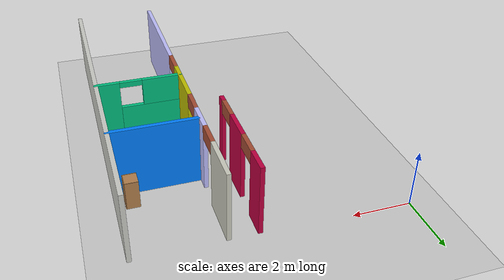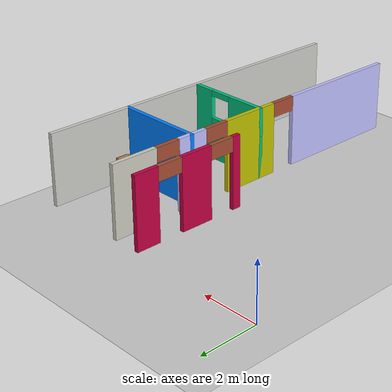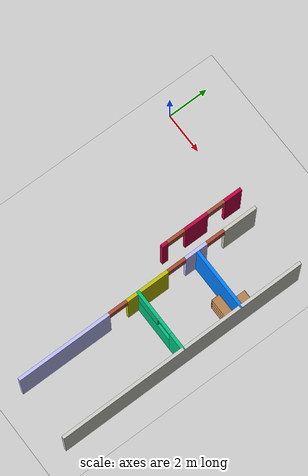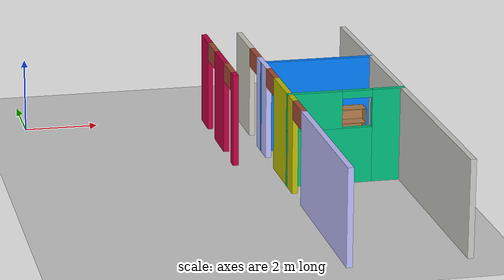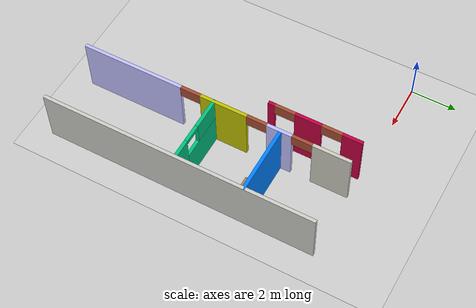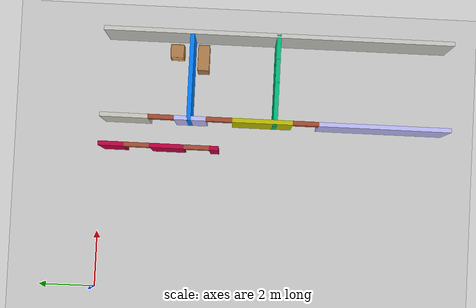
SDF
<sdf version="1.6">
 <world name="default">
  <model name="ground_plane">
   <static>1</static>
   <link name="link">
    <collision name="collision">
     <geometry><plane><normal>0 0 1</normal><size>100 100</size></plane></geometry>
     <surface>
      <contact><collide_bitmask>65535</collide_bitmask></contact>
      <friction><ode><mu>100</mu><mu2>50</mu2></ode></friction>
     </surface>
    </collision>
    <visual name="visual">
     <cast_shadows>0</cast_shadows>
     <geometry><plane><normal>0 0 1</normal><size>100 100</size></plane></geometry>
     <material>
      <script><uri>file://media/materials/scripts/gazebo.material</uri><name>Gazebo/Grey</name></script>
     </material>
    </visual>
   </link>
  </model>
  <model name="cabinet_0">
   <static>1</static>
   <link name="cabinet_bottom_plate">
    <inertial>
     <pose>0 0 -1 0 -0 0</pose>
     <inertia><ixx>2.05</ixx><ixy>0</ixy><ixz>0</ixz><iyy>2.05</iyy><iyz>0</iyz><izz>2.05</izz></inertia>
     <mass>25</mass>
    </inertial>
    <collision name="cabinet_bottom_plate_geom">
     <pose>0 0 0.01 0 -0 0</pose>
     <geometry><box><size>0.45 0.45 0.02</size></box></geometry>
    </collision>
    <visual name="cabinet_bottom_plate_geom_visual">
     <pose>0 0 0.01 0 -0 0</pose>
     <geometry><box><size>0.45 0.45 0.02</size></box></geometry>
     <material>
      <script><uri>file://media/materials/scripts/gazebo.material</uri><name>Gazebo/Wood</name></script>
     </material>
    </visual>
    <collision name="cabinet_bottom_plate_geom_cabinet_back_plate">
     <pose>0.235 0 0.51 0 -0 0</pose>
     <geometry><box><size>0.02 0.45 1.02</size></box></geometry>
    </collision>
    <visual name="cabinet_bottom_plate_geom_cabinet_back_plate_visual">
     <pose>0.235 0 0.51 0 -0 0</pose>
     <geometry><box><size>0.02 0.45 1.02</size></box></geometry>
     <material>
      <script><uri>file://media/materials/scripts/gazebo.material</uri><name>Gazebo/Wood</name></script>
     </material>
    </visual>
    <collision name="cabinet_bottom_plate_geom_cabinet_left_plate">
     <pose>0 0.235 0.51 0 -0 0</pose>
     <geometry><box><size>0.45 0.02 1.02</size></box></geometry>
    </collision>
    <visual name="cabinet_bottom_plate_geom_cabinet_left_plate_visual">
     <pose>0 0.235 0.51 0 -0 0</pose>
     <geometry><box><size>0.45 0.02 1.02</size></box></geometry>
     <material>
      <script><uri>file://media/materials/scripts/gazebo.material</uri><name>Gazebo/Wood</name></script>
     </material>
    </visual>
    <collision name="cabinet_bottom_plate_geom_cabinet_middle_plate">
     <pose>0 0 0.51 0 -0 0</pose>
     <geometry><box><size>0.45 0.45 0.02</size></box></geometry>
    </collision>
    <visual name="cabinet_bottom_plate_geom_cabinet_middle_plate_visual">
     <pose>0 0 0.51 0 -0 0</pose>
     <geometry><box><size>0.45 0.45 0.02</size></box></geometry>
     <material>
      <script><uri>file://media/materials/scripts/gazebo.material</uri><name>Gazebo/Wood</name></script>
     </material>
    </visual>
    <collision name="cabinet_bottom_plate_geom_cabinet_right_plate">
     <pose>0 -0.235 0.51 0 -0 0</pose>
     <geometry><box><size>0.45 0.02 1.02</size></box></geometry>
    </collision>
    <visual name="cabinet_bottom_plate_geom_cabinet_right_plate_visual">
     <pose>0 -0.235 0.51 0 -0 0</pose>
     <geometry><box><size>0.45 0.02 1.02</size></box></geometry>
     <material>
      <script><uri>file://media/materials/scripts/gazebo.material</uri><name>Gazebo/Wood</name></script>
     </material>
    </visual>
    <collision name="cabinet_bottom_plate_geom_cabinet_top_plate">
     <pose>0 0 1.01 0 -0 0</pose>
     <geometry><box><size>0.45 0.45 0.02</size></box></geometry>
    </collision>
    <visual name="cabinet_bottom_plate_geom_cabinet_top_plate_visual">
     <pose>0 0 1.01 0 -0 0</pose>
     <geometry><box><size>0.45 0.45 0.02</size></box></geometry>
     <material>
      <script><uri>file://media/materials/scripts/gazebo.material</uri><name>Gazebo/Wood</name></script>
     </material>
    </visual>
   </link>
   <pose>8.53968 -2.63163 0 0 -0 0</pose>
  </model>
  <model name="my_building">
   <link name="Wall_17">
    <pose>0.5 4 0 0 0 -1.5708</pose>
    <inertial>
     <mass>1</mass>
     <inertia><ixx>1</ixx><ixy>0</ixy><ixz>0</ixz><iyy>1</iyy><iyz>0</iyz><izz>1</izz></inertia>
    </inertial>
    <visual name="Wall_17_Visual_2">
     <pose>1.92248 0 1.25 0 -0 0</pose>
     <geometry><box><size>0.305035 0.15 2.5</size></box></geometry>
     <material>
      <script><uri>file://media/materials/scripts/gazebo.material</uri><name>Gazebo/Grey</name></script>
      <ambient>0.75 0 0.25 1</ambient>
      <shader type="pixel"><normal_map>__default__</normal_map></shader>
      <diffuse>0.7 0.7 0.7 1</diffuse>
      <specular>0.01 0.01 0.01 1</specular>
      <emissive>0 0 0 1</emissive>
     </material>
     <meta><layer>0</layer></meta>
    </visual>
    <visual name="Wall_17_Visual_0">
     <pose>-1.63815 0 1.25 0 -0 0</pose>
     <geometry><box><size>0.873694 0.15 2.5</size></box></geometry>
     <material>
      <script><uri>file://media/materials/scripts/gazebo.material</uri><name>Gazebo/Grey</name></script>
      <ambient>0.75 0 0.25 1</ambient>
      <shader type="pixel"><normal_map>__default__</normal_map></shader>
      <diffuse>0.7 0.7 0.7 1</diffuse>
      <specular>0.01 0.01 0.01 1</specular>
      <emissive>0 0 0 1</emissive>
     </material>
     <meta><layer>0</layer></meta>
    </visual>
    <visual name="Wall_17_Visual_4">
     <pose>1.31997 0 2.25 0 -0 0</pose>
     <geometry><box><size>0.9 0.15 0.5</size></box></geometry>
     <material>
      <script><uri>file://media/materials/scripts/gazebo.material</uri><name>Gazebo/Bricks</name></script>
      <ambient>1 1 1 1</ambient>
      <shader type="pixel"><normal_map>__default__</normal_map></shader>
      <diffuse>0.7 0.7 0.7 1</diffuse>
      <specular>0.01 0.01 0.01 1</specular>
      <emissive>0 0 0 1</emissive>
     </material>
     <meta><layer>0</layer></meta>
    </visual>
    <visual name="Wall_17_Visual_1">
     <pose>0.28433 0 1.25 0 -0 0</pose>
     <geometry><box><size>1.17127 0.15 2.5</size></box></geometry>
     <material>
      <script><uri>file://media/materials/scripts/gazebo.material</uri><name>Gazebo/Grey</name></script>
      <ambient>0.75 0 0.25 1</ambient>
      <shader type="pixel"><normal_map>__default__</normal_map></shader>
      <diffuse>0.7 0.7 0.7 1</diffuse>
      <specular>0.01 0.01 0.01 1</specular>
      <emissive>0 0 0 1</emissive>
     </material>
     <meta><layer>0</layer></meta>
    </visual>
    <visual name="Wall_17_Visual_3">
     <pose>-0.751306 0 2.25 0 -0 0</pose>
     <geometry><box><size>0.9 0.15 0.5</size></box></geometry>
     <material>
      <script><uri>file://media/materials/scripts/gazebo.material</uri><name>Gazebo/Bricks</name></script>
      <ambient>1 1 1 1</ambient>
      <shader type="pixel"><normal_map>__default__</normal_map></shader>
      <diffuse>0.7 0.7 0.7 1</diffuse>
      <specular>0.01 0.01 0.01 1</specular>
      <emissive>0 0 0 1</emissive>
     </material>
     <meta><layer>0</layer></meta>
    </visual>
    <collision name="Wall_17_Collision_0">
     <pose>-1.63815 0 1.25 0 -0 0</pose>
     <geometry><box><size>0.873694 0.15 2.5</size></box></geometry>
     <surface>
      <friction>
       <ode><mu>1</mu><mu2>1</mu2><fdir1>0 0 0</fdir1><slip1>0</slip1><slip2>0</slip2></ode>
       <torsional>
        <coefficient>1</coefficient>
        <patch_radius>0</patch_radius>
        <surface_radius>0</surface_radius>
        <use_patch_radius>1</use_patch_radius>
        <ode><slip>0</slip></ode>
       </torsional>
      </friction>
      <bounce><restitution_coefficient>0</restitution_coefficient><threshold>1e+06</threshold></bounce>
      <contact>
       <collide_without_contact>0</collide_without_contact>
       <collide_without_contact_bitmask>1</collide_without_contact_bitmask>
       <collide_bitmask>1</collide_bitmask>
       <ode>
        <soft_cfm>0</soft_cfm>
        <soft_erp>0.2</soft_erp>
        <kp>1e+13</kp>
        <kd>1</kd>
        <max_vel>0.01</max_vel>
        <min_depth>0</min_depth>
       </ode>
       <bullet>
        <split_impulse>1</split_impulse>
        <split_impulse_penetration_threshold>-0.01</split_impulse_penetration_threshold>
        <soft_cfm>0</soft_cfm>
        <soft_erp>0.2</soft_erp>
        <kp>1e+13</kp>
        <kd>1</kd>
       </bullet>
      </contact>
     </surface>
    </collision>
    <collision name="Wall_17_Collision_3">
     <pose>-0.751306 0 2.25 0 -0 0</pose>
     <geometry><box><size>0.9 0.15 0.5</size></box></geometry>
     <surface>
      <friction>
       <ode><mu>1</mu><mu2>1</mu2><fdir1>0 0 0</fdir1><slip1>0</slip1><slip2>0</slip2></ode>
       <torsional>
        <coefficient>1</coefficient>
        <patch_radius>0</patch_radius>
        <surface_radius>0</surface_radius>
        <use_patch_radius>1</use_patch_radius>
        <ode><slip>0</slip></ode>
       </torsional>
      </friction>
      <bounce><restitution_coefficient>0</restitution_coefficient><threshold>1e+06</threshold></bounce>
      <contact>
       <collide_without_contact>0</collide_without_contact>
       <collide_without_contact_bitmask>1</collide_without_contact_bitmask>
       <collide_bitmask>1</collide_bitmask>
       <ode>
        <soft_cfm>0</soft_cfm>
        <soft_erp>0.2</soft_erp>
        <kp>1e+13</kp>
        <kd>1</kd>
        <max_vel>0.01</max_vel>
        <min_depth>0</min_depth>
       </ode>
       <bullet>
        <split_impulse>1</split_impulse>
        <split_impulse_penetration_threshold>-0.01</split_impulse_penetration_threshold>
        <soft_cfm>0</soft_cfm>
        <soft_erp>0.2</soft_erp>
        <kp>1e+13</kp>
        <kd>1</kd>
       </bullet>
      </contact>
     </surface>
    </collision>
    <collision name="Wall_17_Collision_1">
     <pose>0.28433 0 1.25 0 -0 0</pose>
     <geometry><box><size>1.17127 0.15 2.5</size></box></geometry>
     <surface>
      <friction>
       <ode><mu>1</mu><mu2>1</mu2><fdir1>0 0 0</fdir1><slip1>0</slip1><slip2>0</slip2></ode>
       <torsional>
        <coefficient>1</coefficient>
        <patch_radius>0</patch_radius>
        <surface_radius>0</surface_radius>
        <use_patch_radius>1</use_patch_radius>
        <ode><slip>0</slip></ode>
       </torsional>
      </friction>
      <bounce><restitution_coefficient>0</restitution_coefficient><threshold>1e+06</threshold></bounce>
      <contact>
       <collide_without_contact>0</collide_without_contact>
       <collide_without_contact_bitmask>1</collide_without_contact_bitmask>
       <collide_bitmask>1</collide_bitmask>
       <ode>
        <soft_cfm>0</soft_cfm>
        <soft_erp>0.2</soft_erp>
        <kp>1e+13</kp>
        <kd>1</kd>
        <max_vel>0.01</max_vel>
        <min_depth>0</min_depth>
       </ode>
       <bullet>
        <split_impulse>1</split_impulse>
        <split_impulse_penetration_threshold>-0.01</split_impulse_penetration_threshold>
        <soft_cfm>0</soft_cfm>
        <soft_erp>0.2</soft_erp>
        <kp>1e+13</kp>
        <kd>1</kd>
       </bullet>
      </contact>
     </surface>
    </collision>
    <collision name="Wall_17_Collision_2">
     <pose>1.92248 0 1.25 0 -0 0</pose>
     <geometry><box><size>0.305035 0.15 2.5</size></box></geometry>
     <surface>
      <friction>
       <ode><mu>1</mu><mu2>1</mu2><fdir1>0 0 0</fdir1><slip1>0</slip1><slip2>0</slip2></ode>
       <torsional>
        <coefficient>1</coefficient>
        <patch_radius>0</patch_radius>
        <surface_radius>0</surface_radius>
        <use_patch_radius>1</use_patch_radius>
        <ode><slip>0</slip></ode>
       </torsional>
      </friction>
      <bounce><restitution_coefficient>0</restitution_coefficient><threshold>1e+06</threshold></bounce>
      <contact>
       <collide_without_contact>0</collide_without_contact>
       <collide_without_contact_bitmask>1</collide_without_contact_bitmask>
       <collide_bitmask>1</collide_bitmask>
       <ode>
        <soft_cfm>0</soft_cfm>
        <soft_erp>0.2</soft_erp>
        <kp>1e+13</kp>
        <kd>1</kd>
        <max_vel>0.01</max_vel>
        <min_depth>0</min_depth>
       </ode>
       <bullet>
        <split_impulse>1</split_impulse>
        <split_impulse_penetration_threshold>-0.01</split_impulse_penetration_threshold>
        <soft_cfm>0</soft_cfm>
        <soft_erp>0.2</soft_erp>
        <kp>1e+13</kp>
        <kd>1</kd>
       </bullet>
      </contact>
     </surface>
    </collision>
    <collision name="Wall_17_Collision_4">
     <pose>1.31997 0 2.25 0 -0 0</pose>
     <geometry><box><size>0.9 0.15 0.5</size></box></geometry>
     <surface>
      <friction>
       <ode><mu>1</mu><mu2>1</mu2><fdir1>0 0 0</fdir1><slip1>0</slip1><slip2>0</slip2></ode>
       <torsional>
        <coefficient>1</coefficient>
        <patch_radius>0</patch_radius>
        <surface_radius>0</surface_radius>
        <use_patch_radius>1</use_patch_radius>
        <ode><slip>0</slip></ode>
       </torsional>
      </friction>
      <bounce><restitution_coefficient>0</restitution_coefficient><threshold>1e+06</threshold></bounce>
      <contact>
       <collide_without_contact>0</collide_without_contact>
       <collide_without_contact_bitmask>1</collide_without_contact_bitmask>
       <collide_bitmask>1</collide_bitmask>
       <ode>
        <soft_cfm>0</soft_cfm>
        <soft_erp>0.2</soft_erp>
        <kp>1e+13</kp>
        <kd>1</kd>
        <max_vel>0.01</max_vel>
        <min_depth>0</min_depth>
       </ode>
       <bullet>
        <split_impulse>1</split_impulse>
        <split_impulse_penetration_threshold>-0.01</split_impulse_penetration_threshold>
        <soft_cfm>0</soft_cfm>
        <soft_erp>0.2</soft_erp>
        <kp>1e+13</kp>
        <kd>1</kd>
       </bullet>
      </contact>
     </surface>
    </collision>
   </link>
   <link name="Wall_19">
    <pose>3 3 0 0 -0 3.14159</pose>
    <inertial>
     <mass>1</mass>
     <inertia><ixx>1</ixx><ixy>0</ixy><ixz>0</ixz><iyy>1</iyy><iyz>0</iyz><izz>1</izz></inertia>
    </inertial>
    <visual name="Wall_19_Visual">
     <pose>0 0 1.25 0 -0 0</pose>
     <geometry><box><size>3.15 0.15 2.5</size></box></geometry>
     <material>
      <script><uri>file://media/materials/scripts/gazebo.material</uri><name>Gazebo/Grey</name></script>
      <ambient>0 0.5 1 1</ambient>
      <shader type="pixel"><normal_map>__default__</normal_map></shader>
      <diffuse>0.7 0.7 0.7 1</diffuse>
      <specular>0.01 0.01 0.01 1</specular>
      <emissive>0 0 0 1</emissive>
     </material>
     <meta><layer>0</layer></meta>
    </visual>
    <collision name="Wall_19_Collision">
     <pose>0 0 1.25 0 -0 0</pose>
     <geometry><box><size>3.15 0.15 2.5</size></box></geometry>
     <surface>
      <friction>
       <ode><mu>1</mu><mu2>1</mu2><fdir1>0 0 0</fdir1><slip1>0</slip1><slip2>0</slip2></ode>
       <torsional>
        <coefficient>1</coefficient>
        <patch_radius>0</patch_radius>
        <surface_radius>0</surface_radius>
        <use_patch_radius>1</use_patch_radius>
        <ode><slip>0</slip></ode>
       </torsional>
      </friction>
      <bounce><restitution_coefficient>0</restitution_coefficient><threshold>1e+06</threshold></bounce>
      <contact>
       <collide_without_contact>0</collide_without_contact>
       <collide_without_contact_bitmask>1</collide_without_contact_bitmask>
       <collide_bitmask>1</collide_bitmask>
       <ode>
        <soft_cfm>0</soft_cfm>
        <soft_erp>0.2</soft_erp>
        <kp>1e+13</kp>
        <kd>1</kd>
        <max_vel>0.01</max_vel>
        <min_depth>0</min_depth>
       </ode>
       <bullet>
        <split_impulse>1</split_impulse>
        <split_impulse_penetration_threshold>-0.01</split_impulse_penetration_threshold>
        <soft_cfm>0</soft_cfm>
        <soft_erp>0.2</soft_erp>
        <kp>1e+13</kp>
        <kd>1</kd>
       </bullet>
      </contact>
     </surface>
    </collision>
   </link>
   <link name="Wall_2">
    <pose>4.5 0 0 0 0 -1.5708</pose>
    <visual name="Wall_2_Visual">
     <pose>0 0 1.25 0 -0 0</pose>
     <geometry><box><size>12.15 0.15 2.5</size></box></geometry>
     <material>
      <script><uri>file://media/materials/scripts/gazebo.material</uri><name>Gazebo/CeilingTiled</name></script>
      <ambient>0.760784 0.662745 0.627451 1</ambient>
      <shader type="pixel"/>
      <diffuse>1 1 1 1</diffuse>
      <specular>0 0 0 1</specular>
      <emissive>0 0 0 1</emissive>
     </material>
     <meta><layer>0</layer></meta>
    </visual>
    <collision name="Wall_2_Collision">
     <pose>0 0 1.25 0 -0 0</pose>
     <geometry><box><size>12.15 0.15 2.5</size></box></geometry>
     <surface>
      <friction>
       <ode><mu>1</mu><mu2>1</mu2><fdir1>0 0 0</fdir1><slip1>0</slip1><slip2>0</slip2></ode>
       <torsional>
        <coefficient>1</coefficient>
        <patch_radius>0</patch_radius>
        <surface_radius>0</surface_radius>
        <use_patch_radius>1</use_patch_radius>
        <ode><slip>0</slip></ode>
       </torsional>
      </friction>
      <bounce><restitution_coefficient>0</restitution_coefficient><threshold>1e+06</threshold></bounce>
      <contact>
       <collide_without_contact>0</collide_without_contact>
       <collide_without_contact_bitmask>1</collide_without_contact_bitmask>
       <collide_bitmask>1</collide_bitmask>
       <ode>
        <soft_cfm>0</soft_cfm>
        <soft_erp>0.2</soft_erp>
        <kp>1e+13</kp>
        <kd>1</kd>
        <max_vel>0.01</max_vel>
        <min_depth>0</min_depth>
       </ode>
       <bullet>
        <split_impulse>1</split_impulse>
        <split_impulse_penetration_threshold>-0.01</split_impulse_penetration_threshold>
        <soft_cfm>0</soft_cfm>
        <soft_erp>0.2</soft_erp>
        <kp>1e+13</kp>
        <kd>1</kd>
       </bullet>
      </contact>
     </surface>
    </collision>
   </link>
   <link name="Wall_21">
    <pose>3 0 0 0 -0 3.14159</pose>
    <inertial>
     <mass>1</mass>
     <inertia><ixx>1</ixx><ixy>0</ixy><ixz>0</ixz><iyy>1</iyy><iyz>0</iyz><izz>1</izz></inertia>
    </inertial>
    <visual name="Wall_21_Visual_0">
     <pose>-1.12718 0 1.25 0 -0 0</pose>
     <geometry><box><size>0.895631 0.15 2.5</size></box></geometry>
     <material>
      <script><uri>file://media/materials/scripts/gazebo.material</uri><name>Gazebo/Grey</name></script>
      <ambient>0 0.75 0.5 1</ambient>
      <shader type="pixel"><normal_map>__default__</normal_map></shader>
      <diffuse>0.7 0.7 0.7 1</diffuse>
      <specular>0.01 0.01 0.01 1</specular>
      <emissive>0 0 0 1</emissive>
     </material>
     <meta><layer>0</layer></meta>
    </visual>
    <visual name="Wall_21_Visual_1">
     <pose>0.447816 0 0.75 0 -0 0</pose>
     <geometry><box><size>2.25437 0.15 1.5</size></box></geometry>
     <material>
      <script><uri>file://media/materials/scripts/gazebo.material</uri><name>Gazebo/Grey</name></script>
      <ambient>0 0.75 0.5 1</ambient>
      <shader type="pixel"><normal_map>__default__</normal_map></shader>
      <diffuse>0.7 0.7 0.7 1</diffuse>
      <specular>0.01 0.01 0.01 1</specular>
      <emissive>0 0 0 1</emissive>
     </material>
     <meta><layer>0</layer></meta>
    </visual>
    <visual name="Wall_21_Visual_3">
     <pose>-0.279369 0 2.4 0 -0 0</pose>
     <geometry><box><size>0.8 0.15 0.2</size></box></geometry>
     <material>
      <script><uri>file://media/materials/scripts/gazebo.material</uri><name>Gazebo/Grey</name></script>
      <ambient>0 0.75 0.5 1</ambient>
      <shader type="pixel"><normal_map>__default__</normal_map></shader>
      <diffuse>0.7 0.7 0.7 1</diffuse>
      <specular>0.01 0.01 0.01 1</specular>
      <emissive>0 0 0 1</emissive>
     </material>
     <meta><layer>0</layer></meta>
    </visual>
    <visual name="Wall_21_Visual_2">
     <pose>0.847816 0 2 0 -0 0</pose>
     <geometry><box><size>1.45437 0.15 1</size></box></geometry>
     <material>
      <script><uri>file://media/materials/scripts/gazebo.material</uri><name>Gazebo/Grey</name></script>
      <ambient>0 0.75 0.5 1</ambient>
      <shader type="pixel"><normal_map>__default__</normal_map></shader>
      <diffuse>0.7 0.7 0.7 1</diffuse>
      <specular>0.01 0.01 0.01 1</specular>
      <emissive>0 0 0 1</emissive>
     </material>
     <meta><layer>0</layer></meta>
    </visual>
    <collision name="Wall_21_Collision_1">
     <pose>0.447816 0 0.75 0 -0 0</pose>
     <geometry><box><size>2.25437 0.15 1.5</size></box></geometry>
     <surface>
      <friction>
       <ode><mu>1</mu><mu2>1</mu2><fdir1>0 0 0</fdir1><slip1>0</slip1><slip2>0</slip2></ode>
       <torsional>
        <coefficient>1</coefficient>
        <patch_radius>0</patch_radius>
        <surface_radius>0</surface_radius>
        <use_patch_radius>1</use_patch_radius>
        <ode><slip>0</slip></ode>
       </torsional>
      </friction>
      <bounce><restitution_coefficient>0</restitution_coefficient><threshold>1e+06</threshold></bounce>
      <contact>
       <collide_without_contact>0</collide_without_contact>
       <collide_without_contact_bitmask>1</collide_without_contact_bitmask>
       <collide_bitmask>1</collide_bitmask>
       <ode>
        <soft_cfm>0</soft_cfm>
        <soft_erp>0.2</soft_erp>
        <kp>1e+13</kp>
        <kd>1</kd>
        <max_vel>0.01</max_vel>
        <min_depth>0</min_depth>
       </ode>
       <bullet>
        <split_impulse>1</split_impulse>
        <split_impulse_penetration_threshold>-0.01</split_impulse_penetration_threshold>
        <soft_cfm>0</soft_cfm>
        <soft_erp>0.2</soft_erp>
        <kp>1e+13</kp>
        <kd>1</kd>
       </bullet>
      </contact>
     </surface>
    </collision>
    <collision name="Wall_21_Collision_2">
     <pose>0.847816 0 2 0 -0 0</pose>
     <geometry><box><size>1.45437 0.15 1</size></box></geometry>
     <surface>
      <friction>
       <ode><mu>1</mu><mu2>1</mu2><fdir1>0 0 0</fdir1><slip1>0</slip1><slip2>0</slip2></ode>
       <torsional>
        <coefficient>1</coefficient>
        <patch_radius>0</patch_radius>
        <surface_radius>0</surface_radius>
        <use_patch_radius>1</use_patch_radius>
        <ode><slip>0</slip></ode>
       </torsional>
      </friction>
      <bounce><restitution_coefficient>0</restitution_coefficient><threshold>1e+06</threshold></bounce>
      <contact>
       <collide_without_contact>0</collide_without_contact>
       <collide_without_contact_bitmask>1</collide_without_contact_bitmask>
       <collide_bitmask>1</collide_bitmask>
       <ode>
        <soft_cfm>0</soft_cfm>
        <soft_erp>0.2</soft_erp>
        <kp>1e+13</kp>
        <kd>1</kd>
        <max_vel>0.01</max_vel>
        <min_depth>0</min_depth>
       </ode>
       <bullet>
        <split_impulse>1</split_impulse>
        <split_impulse_penetration_threshold>-0.01</split_impulse_penetration_threshold>
        <soft_cfm>0</soft_cfm>
        <soft_erp>0.2</soft_erp>
        <kp>1e+13</kp>
        <kd>1</kd>
       </bullet>
      </contact>
     </surface>
    </collision>
    <collision name="Wall_21_Collision_0">
     <pose>-1.12718 0 1.25 0 -0 0</pose>
     <geometry><box><size>0.895631 0.15 2.5</size></box></geometry>
     <surface>
      <friction>
       <ode><mu>1</mu><mu2>1</mu2><fdir1>0 0 0</fdir1><slip1>0</slip1><slip2>0</slip2></ode>
       <torsional>
        <coefficient>1</coefficient>
        <patch_radius>0</patch_radius>
        <surface_radius>0</surface_radius>
        <use_patch_radius>1</use_patch_radius>
        <ode><slip>0</slip></ode>
       </torsional>
      </friction>
      <bounce><restitution_coefficient>0</restitution_coefficient><threshold>1e+06</threshold></bounce>
      <contact>
       <collide_without_contact>0</collide_without_contact>
       <collide_without_contact_bitmask>1</collide_without_contact_bitmask>
       <collide_bitmask>1</collide_bitmask>
       <ode>
        <soft_cfm>0</soft_cfm>
        <soft_erp>0.2</soft_erp>
        <kp>1e+13</kp>
        <kd>1</kd>
        <max_vel>0.01</max_vel>
        <min_depth>0</min_depth>
       </ode>
       <bullet>
        <split_impulse>1</split_impulse>
        <split_impulse_penetration_threshold>-0.01</split_impulse_penetration_threshold>
        <soft_cfm>0</soft_cfm>
        <soft_erp>0.2</soft_erp>
        <kp>1e+13</kp>
        <kd>1</kd>
       </bullet>
      </contact>
     </surface>
    </collision>
    <collision name="Wall_21_Collision_3">
     <pose>-0.279369 0 2.4 0 -0 0</pose>
     <geometry><box><size>0.8 0.15 0.2</size></box></geometry>
     <surface>
      <friction>
       <ode><mu>1</mu><mu2>1</mu2><fdir1>0 0 0</fdir1><slip1>0</slip1><slip2>0</slip2></ode>
       <torsional>
        <coefficient>1</coefficient>
        <patch_radius>0</patch_radius>
        <surface_radius>0</surface_radius>
        <use_patch_radius>1</use_patch_radius>
        <ode><slip>0</slip></ode>
       </torsional>
      </friction>
      <bounce><restitution_coefficient>0</restitution_coefficient><threshold>1e+06</threshold></bounce>
      <contact>
       <collide_without_contact>0</collide_without_contact>
       <collide_without_contact_bitmask>1</collide_without_contact_bitmask>
       <collide_bitmask>1</collide_bitmask>
       <ode>
        <soft_cfm>0</soft_cfm>
        <soft_erp>0.2</soft_erp>
        <kp>1e+13</kp>
        <kd>1</kd>
        <max_vel>0.01</max_vel>
        <min_depth>0</min_depth>
       </ode>
       <bullet>
        <split_impulse>1</split_impulse>
        <split_impulse_penetration_threshold>-0.01</split_impulse_penetration_threshold>
        <soft_cfm>0</soft_cfm>
        <soft_erp>0.2</soft_erp>
        <kp>1e+13</kp>
        <kd>1</kd>
       </bullet>
      </contact>
     </surface>
    </collision>
   </link>
   <link name="Wall_9">
    <pose>1.5 0 0 0 0 -1.5708</pose>
    <inertial>
     <mass>1</mass>
     <inertia><ixx>1</ixx><ixy>0</ixy><ixz>0</ixz><iyy>1</iyy><iyz>0</iyz><izz>1</izz></inertia>
    </inertial>
    <visual name="Wall_9_Visual_2">
     <pose>-0.444349 0 1.25 0 -0 0</pose>
     <geometry><box><size>2.11133 0.15 2.5</size></box></geometry>
     <material>
      <script><uri>file://media/materials/scripts/gazebo.material</uri><name>Gazebo/Grey</name></script>
      <ambient>0.75 0.75 0 1</ambient>
      <shader type="pixel"><normal_map>__default__</normal_map></shader>
      <diffuse>0.7 0.7 0.7 1</diffuse>
      <specular>0.01 0.01 0.01 1</specular>
      <emissive>0 0 0 1</emissive>
     </material>
     <meta><layer>0</layer></meta>
    </visual>
    <visual name="Wall_9_Visual_1">
     <pose>-2.95379 0 1.25 0 -0 0</pose>
     <geometry><box><size>1.10756 0.15 2.5</size></box></geometry>
     <material>
      <script><uri>file://media/materials/scripts/gazebo.material</uri><name>Gazebo/Grey</name></script>
      <ambient>0.75 0.75 1 1</ambient>
      <shader type="pixel"><normal_map>__default__</normal_map></shader>
      <diffuse>0.7 0.7 0.7 1</diffuse>
      <specular>0.01 0.01 0.01 1</specular>
      <emissive>0 0 0 1</emissive>
     </material>
     <meta><layer>0</layer></meta>
    </visual>
    <visual name="Wall_9_Visual_3">
     <pose>3.79316 0 1.25 0 -0 0</pose>
     <geometry><box><size>4.56368 0.15 2.5</size></box></geometry>
     <material>
      <script><uri>file://media/materials/scripts/gazebo.material</uri><name>Gazebo/Grey</name></script>
      <ambient>0.75 0.75 1 1</ambient>
      <shader type="pixel"><normal_map>__default__</normal_map></shader>
      <diffuse>0.7 0.7 0.7 1</diffuse>
      <specular>0.01 0.01 0.01 1</specular>
      <emissive>0 0 0 1</emissive>
     </material>
     <meta><layer>0</layer></meta>
    </visual>
    <visual name="Wall_9_Visual_0">
     <pose>-5.24129 0 1.25 0 -0 0</pose>
     <geometry><box><size>1.66743 0.15 2.5</size></box></geometry>
     <material>
      <script><uri>file://media/materials/scripts/gazebo.material</uri><name>Gazebo/PaintedWall</name></script>
      <ambient>0.5 0.5 0 1</ambient>
      <shader type="pixel"><normal_map>__default__</normal_map></shader>
      <diffuse>0.7 0.7 0.7 1</diffuse>
      <specular>0.01 0.01 0.01 1</specular>
      <emissive>0 0 0 1</emissive>
     </material>
     <meta><layer>0</layer></meta>
    </visual>
    <visual name="Wall_9_Visual_4">
     <pose>-3.95757 0 2.25 0 -0 0</pose>
     <geometry><box><size>0.9 0.15 0.5</size></box></geometry>
     <material>
      <script><uri>file://media/materials/scripts/gazebo.material</uri><name>Gazebo/Bricks</name></script>
      <ambient>1 1 1 1</ambient>
      <shader type="pixel"><normal_map>__default__</normal_map></shader>
      <diffuse>0.7 0.7 0.7 1</diffuse>
      <specular>0.01 0.01 0.01 1</specular>
      <emissive>0 0 0 1</emissive>
     </material>
     <meta><layer>0</layer></meta>
    </visual>
    <visual name="Wall_9_Visual_6">
     <pose>1.06132 0 2.25 0 -0 0</pose>
     <geometry><box><size>0.9 0.15 0.5</size></box></geometry>
     <material>
      <script><uri>file://media/materials/scripts/gazebo.material</uri><name>Gazebo/Bricks</name></script>
      <ambient>1 1 1 1</ambient>
      <shader type="pixel"><normal_map>__default__</normal_map></shader>
      <diffuse>0.7 0.7 0.7 1</diffuse>
      <specular>0.01 0.01 0.01 1</specular>
      <emissive>0 0 0 1</emissive>
     </material>
     <meta><layer>0</layer></meta>
    </visual>
    <visual name="Wall_9_Visual_5">
     <pose>-1.95002 0 2.25 0 -0 0</pose>
     <geometry><box><size>0.9 0.15 0.5</size></box></geometry>
     <material>
      <script><uri>file://media/materials/scripts/gazebo.material</uri><name>Gazebo/Bricks</name></script>
      <ambient>1 1 1 1</ambient>
      <shader type="pixel"><normal_map>__default__</normal_map></shader>
      <diffuse>0.7 0.7 0.7 1</diffuse>
      <specular>0.01 0.01 0.01 1</specular>
      <emissive>0 0 0 1</emissive>
     </material>
     <meta><layer>0</layer></meta>
    </visual>
    <collision name="Wall_9_Collision_0">
     <pose>-5.24129 0 1.25 0 -0 0</pose>
     <geometry><box><size>1.66743 0.15 2.5</size></box></geometry>
     <surface>
      <friction>
       <ode><mu>1</mu><mu2>1</mu2><fdir1>0 0 0</fdir1><slip1>0</slip1><slip2>0</slip2></ode>
       <torsional>
        <coefficient>1</coefficient>
        <patch_radius>0</patch_radius>
        <surface_radius>0</surface_radius>
        <use_patch_radius>1</use_patch_radius>
        <ode><slip>0</slip></ode>
       </torsional>
      </friction>
      <bounce><restitution_coefficient>0</restitution_coefficient><threshold>1e+06</threshold></bounce>
      <contact>
       <collide_without_contact>0</collide_without_contact>
       <collide_without_contact_bitmask>1</collide_without_contact_bitmask>
       <collide_bitmask>1</collide_bitmask>
       <ode>
        <soft_cfm>0</soft_cfm>
        <soft_erp>0.2</soft_erp>
        <kp>1e+13</kp>
        <kd>1</kd>
        <max_vel>0.01</max_vel>
        <min_depth>0</min_depth>
       </ode>
       <bullet>
        <split_impulse>1</split_impulse>
        <split_impulse_penetration_threshold>-0.01</split_impulse_penetration_threshold>
        <soft_cfm>0</soft_cfm>
        <soft_erp>0.2</soft_erp>
        <kp>1e+13</kp>
        <kd>1</kd>
       </bullet>
      </contact>
     </surface>
    </collision>
    <collision name="Wall_9_Collision_1">
     <pose>-2.95379 0 1.25 0 -0 0</pose>
     <geometry><box><size>1.10756 0.15 2.5</size></box></geometry>
     <surface>
      <friction>
       <ode><mu>1</mu><mu2>1</mu2><fdir1>0 0 0</fdir1><slip1>0</slip1><slip2>0</slip2></ode>
       <torsional>
        <coefficient>1</coefficient>
        <patch_radius>0</patch_radius>
        <surface_radius>0</surface_radius>
        <use_patch_radius>1</use_patch_radius>
        <ode><slip>0</slip></ode>
       </torsional>
      </friction>
      <bounce><restitution_coefficient>0</restitution_coefficient><threshold>1e+06</threshold></bounce>
      <contact>
       <collide_without_contact>0</collide_without_contact>
       <collide_without_contact_bitmask>1</collide_without_contact_bitmask>
       <collide_bitmask>1</collide_bitmask>
       <ode>
        <soft_cfm>0</soft_cfm>
        <soft_erp>0.2</soft_erp>
        <kp>1e+13</kp>
        <kd>1</kd>
        <max_vel>0.01</max_vel>
        <min_depth>0</min_depth>
       </ode>
       <bullet>
        <split_impulse>1</split_impulse>
        <split_impulse_penetration_threshold>-0.01</split_impulse_penetration_threshold>
        <soft_cfm>0</soft_cfm>
        <soft_erp>0.2</soft_erp>
        <kp>1e+13</kp>
        <kd>1</kd>
       </bullet>
      </contact>
     </surface>
    </collision>
    <collision name="Wall_9_Collision_3">
     <pose>3.79316 0 1.25 0 -0 0</pose>
     <geometry><box><size>4.56368 0.15 2.5</size></box></geometry>
     <surface>
      <friction>
       <ode><mu>1</mu><mu2>1</mu2><fdir1>0 0 0</fdir1><slip1>0</slip1><slip2>0</slip2></ode>
       <torsional>
        <coefficient>1</coefficient>
        <patch_radius>0</patch_radius>
        <surface_radius>0</surface_radius>
        <use_patch_radius>1</use_patch_radius>
        <ode><slip>0</slip></ode>
       </torsional>
      </friction>
      <bounce><restitution_coefficient>0</restitution_coefficient><threshold>1e+06</threshold></bounce>
      <contact>
       <collide_without_contact>0</collide_without_contact>
       <collide_without_contact_bitmask>1</collide_without_contact_bitmask>
       <collide_bitmask>1</collide_bitmask>
       <ode>
        <soft_cfm>0</soft_cfm>
        <soft_erp>0.2</soft_erp>
        <kp>1e+13</kp>
        <kd>1</kd>
        <max_vel>0.01</max_vel>
        <min_depth>0</min_depth>
       </ode>
       <bullet>
        <split_impulse>1</split_impulse>
        <split_impulse_penetration_threshold>-0.01</split_impulse_penetration_threshold>
        <soft_cfm>0</soft_cfm>
        <soft_erp>0.2</soft_erp>
        <kp>1e+13</kp>
        <kd>1</kd>
       </bullet>
      </contact>
     </surface>
    </collision>
    <collision name="Wall_9_Collision_5">
     <pose>-1.95002 0 2.25 0 -0 0</pose>
     <geometry><box><size>0.9 0.15 0.5</size></box></geometry>
     <surface>
      <friction>
       <ode><mu>1</mu><mu2>1</mu2><fdir1>0 0 0</fdir1><slip1>0</slip1><slip2>0</slip2></ode>
       <torsional>
        <coefficient>1</coefficient>
        <patch_radius>0</patch_radius>
        <surface_radius>0</surface_radius>
        <use_patch_radius>1</use_patch_radius>
        <ode><slip>0</slip></ode>
       </torsional>
      </friction>
      <bounce><restitution_coefficient>0</restitution_coefficient><threshold>1e+06</threshold></bounce>
      <contact>
       <collide_without_contact>0</collide_without_contact>
       <collide_without_contact_bitmask>1</collide_without_contact_bitmask>
       <collide_bitmask>1</collide_bitmask>
       <ode>
        <soft_cfm>0</soft_cfm>
        <soft_erp>0.2</soft_erp>
        <kp>1e+13</kp>
        <kd>1</kd>
        <max_vel>0.01</max_vel>
        <min_depth>0</min_depth>
       </ode>
       <bullet>
        <split_impulse>1</split_impulse>
        <split_impulse_penetration_threshold>-0.01</split_impulse_penetration_threshold>
        <soft_cfm>0</soft_cfm>
        <soft_erp>0.2</soft_erp>
        <kp>1e+13</kp>
        <kd>1</kd>
       </bullet>
      </contact>
     </surface>
    </collision>
    <collision name="Wall_9_Collision_2">
     <pose>-0.444349 0 1.25 0 -0 0</pose>
     <geometry><box><size>2.11133 0.15 2.5</size></box></geometry>
     <surface>
      <friction>
       <ode><mu>1</mu><mu2>1</mu2><fdir1>0 0 0</fdir1><slip1>0</slip1><slip2>0</slip2></ode>
       <torsional>
        <coefficient>1</coefficient>
        <patch_radius>0</patch_radius>
        <surface_radius>0</surface_radius>
        <use_patch_radius>1</use_patch_radius>
        <ode><slip>0</slip></ode>
       </torsional>
      </friction>
      <bounce><restitution_coefficient>0</restitution_coefficient><threshold>1e+06</threshold></bounce>
      <contact>
       <collide_without_contact>0</collide_without_contact>
       <collide_without_contact_bitmask>1</collide_without_contact_bitmask>
       <collide_bitmask>1</collide_bitmask>
       <ode>
        <soft_cfm>0</soft_cfm>
        <soft_erp>0.2</soft_erp>
        <kp>1e+13</kp>
        <kd>1</kd>
        <max_vel>0.01</max_vel>
        <min_depth>0</min_depth>
       </ode>
       <bullet>
        <split_impulse>1</split_impulse>
        <split_impulse_penetration_threshold>-0.01</split_impulse_penetration_threshold>
        <soft_cfm>0</soft_cfm>
        <soft_erp>0.2</soft_erp>
        <kp>1e+13</kp>
        <kd>1</kd>
       </bullet>
      </contact>
     </surface>
    </collision>
    <collision name="Wall_9_Collision_4">
     <pose>-3.95757 0 2.25 0 -0 0</pose>
     <geometry><box><size>0.9 0.15 0.5</size></box></geometry>
     <surface>
      <friction>
       <ode><mu>1</mu><mu2>1</mu2><fdir1>0 0 0</fdir1><slip1>0</slip1><slip2>0</slip2></ode>
       <torsional>
        <coefficient>1</coefficient>
        <patch_radius>0</patch_radius>
        <surface_radius>0</surface_radius>
        <use_patch_radius>1</use_patch_radius>
        <ode><slip>0</slip></ode>
       </torsional>
      </friction>
      <bounce><restitution_coefficient>0</restitution_coefficient><threshold>1e+06</threshold></bounce>
      <contact>
       <collide_without_contact>0</collide_without_contact>
       <collide_without_contact_bitmask>1</collide_without_contact_bitmask>
       <collide_bitmask>1</collide_bitmask>
       <ode>
        <soft_cfm>0</soft_cfm>
        <soft_erp>0.2</soft_erp>
        <kp>1e+13</kp>
        <kd>1</kd>
        <max_vel>0.01</max_vel>
        <min_depth>0</min_depth>
       </ode>
       <bullet>
        <split_impulse>1</split_impulse>
        <split_impulse_penetration_threshold>-0.01</split_impulse_penetration_threshold>
        <soft_cfm>0</soft_cfm>
        <soft_erp>0.2</soft_erp>
        <kp>1e+13</kp>
        <kd>1</kd>
       </bullet>
      </contact>
     </surface>
    </collision>
    <collision name="Wall_9_Collision_6">
     <pose>1.06132 0 2.25 0 -0 0</pose>
     <geometry><box><size>0.9 0.15 0.5</size></box></geometry>
     <surface>
      <friction>
       <ode><mu>1</mu><mu2>1</mu2><fdir1>0 0 0</fdir1><slip1>0</slip1><slip2>0</slip2></ode>
       <torsional>
        <coefficient>1</coefficient>
        <patch_radius>0</patch_radius>
        <surface_radius>0</surface_radius>
        <use_patch_radius>1</use_patch_radius>
        <ode><slip>0</slip></ode>
       </torsional>
      </friction>
      <bounce><restitution_coefficient>0</restitution_coefficient><threshold>1e+06</threshold></bounce>
      <contact>
       <collide_without_contact>0</collide_without_contact>
       <collide_without_contact_bitmask>1</collide_without_contact_bitmask>
       <collide_bitmask>1</collide_bitmask>
       <ode>
        <soft_cfm>0</soft_cfm>
        <soft_erp>0.2</soft_erp>
        <kp>1e+13</kp>
        <kd>1</kd>
        <max_vel>0.01</max_vel>
        <min_depth>0</min_depth>
       </ode>
       <bullet>
        <split_impulse>1</split_impulse>
        <split_impulse_penetration_threshold>-0.01</split_impulse_penetration_threshold>
        <soft_cfm>0</soft_cfm>
        <soft_erp>0.2</soft_erp>
        <kp>1e+13</kp>
        <kd>1</kd>
       </bullet>
      </contact>
     </surface>
    </collision>
   </link>
   <static>1</static>
   <pose>4.55195 -6.20018 0 0 -0 0</pose>
  </model>
  <model name="bookshelf_1">
   <static>1</static>
   <link name="link">
    <inertial><mass>1</mass></inertial>
    <collision name="back">
     <pose>0 0.005 0.6 0 -0 0</pose>
     <geometry><box><size>0.9 0.01 1.2</size></box></geometry>
    </collision>
    <visual name="visual1">
     <pose>0 0.005 0.6 0 -0 0</pose>
     <geometry><box><size>0.9 0.01 1.2</size></box></geometry>
     <material>
      <script><uri>file://media/materials/scripts/gazebo.material</uri><name>Gazebo/Wood</name></script>
     </material>
    </visual>
    <collision name="left_side">
     <pose>0.45 -0.195 0.6 0 -0 0</pose>
     <geometry><box><size>0.02 0.4 1.2</size></box></geometry>
    </collision>
    <visual name="visual2">
     <pose>0.45 -0.195 0.6 0 -0 0</pose>
     <geometry><box><size>0.02 0.4 1.2</size></box></geometry>
     <material>
      <script><uri>file://media/materials/scripts/gazebo.material</uri><name>Gazebo/Wood</name></script>
     </material>
    </visual>
    <collision name="right_side">
     <pose>-0.45 -0.195 0.6 0 -0 0</pose>
     <geometry><box><size>0.02 0.4 1.2</size></box></geometry>
    </collision>
    <visual name="visual3">
     <pose>-0.45 -0.195 0.6 0 -0 0</pose>
     <geometry><box><size>0.02 0.4 1.2</size></box></geometry>
     <material>
      <script><uri>file://media/materials/scripts/gazebo.material</uri><name>Gazebo/Wood</name></script>
     </material>
    </visual>
    <collision name="bottom">
     <pose>0 -0.195 0.03 0 -0 0</pose>
     <geometry><box><size>0.88 0.4 0.06</size></box></geometry>
    </collision>
    <visual name="visual4">
     <pose>0 -0.195 0.03 0 -0 0</pose>
     <geometry><box><size>0.88 0.4 0.06</size></box></geometry>
     <material>
      <script><uri>file://media/materials/scripts/gazebo.material</uri><name>Gazebo/Wood</name></script>
     </material>
    </visual>
    <collision name="top">
     <pose>0 -0.195 1.19 0 -0 0</pose>
     <geometry><box><size>0.88 0.4 0.02</size></box></geometry>
    </collision>
    <visual name="visual5">
     <pose>0 -0.195 1.19 0 -0 0</pose>
     <geometry><box><size>0.88 0.4 0.02</size></box></geometry>
     <material>
      <script><uri>file://media/materials/scripts/gazebo.material</uri><name>Gazebo/Wood</name></script>
     </material>
    </visual>
    <collision name="low_shelf">
     <pose>0 -0.195 0.43 0 -0 0</pose>
     <geometry><box><size>0.88 0.4 0.02</size></box></geometry>
    </collision>
    <visual name="visual6">
     <pose>0 -0.195 0.43 0 -0 0</pose>
     <geometry><box><size>0.88 0.4 0.02</size></box></geometry>
     <material>
      <script><uri>file://media/materials/scripts/gazebo.material</uri><name>Gazebo/Wood</name></script>
     </material>
    </visual>
    <collision name="high_shelf">
     <pose>0 -0.195 0.8 0 -0 0</pose>
     <geometry><box><size>0.88 0.4 0.02</size></box></geometry>
    </collision>
    <visual name="visual7">
     <pose>0 -0.195 0.8 0 -0 0</pose>
     <geometry><box><size>0.88 0.4 0.02</size></box></geometry>
     <material>
      <script><uri>file://media/materials/scripts/gazebo.material</uri><name>Gazebo/Wood</name></script>
     </material>
    </visual>
   </link>
   <pose>8.31711 -3.38364 0 0 -0 0</pose>
  </model>
 </world>
</sdf>
